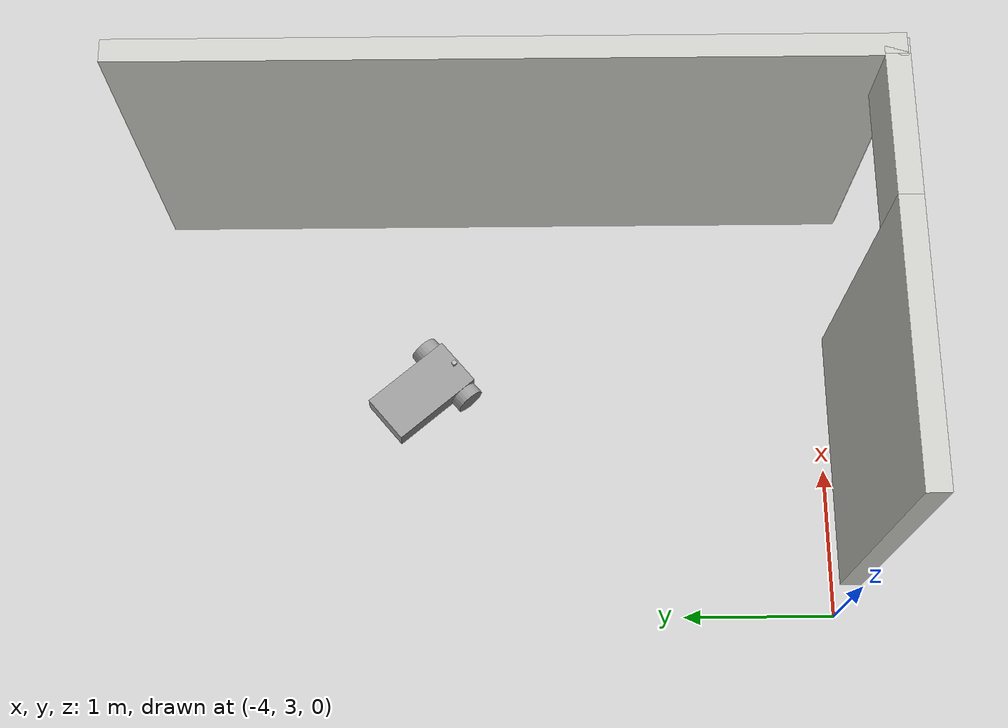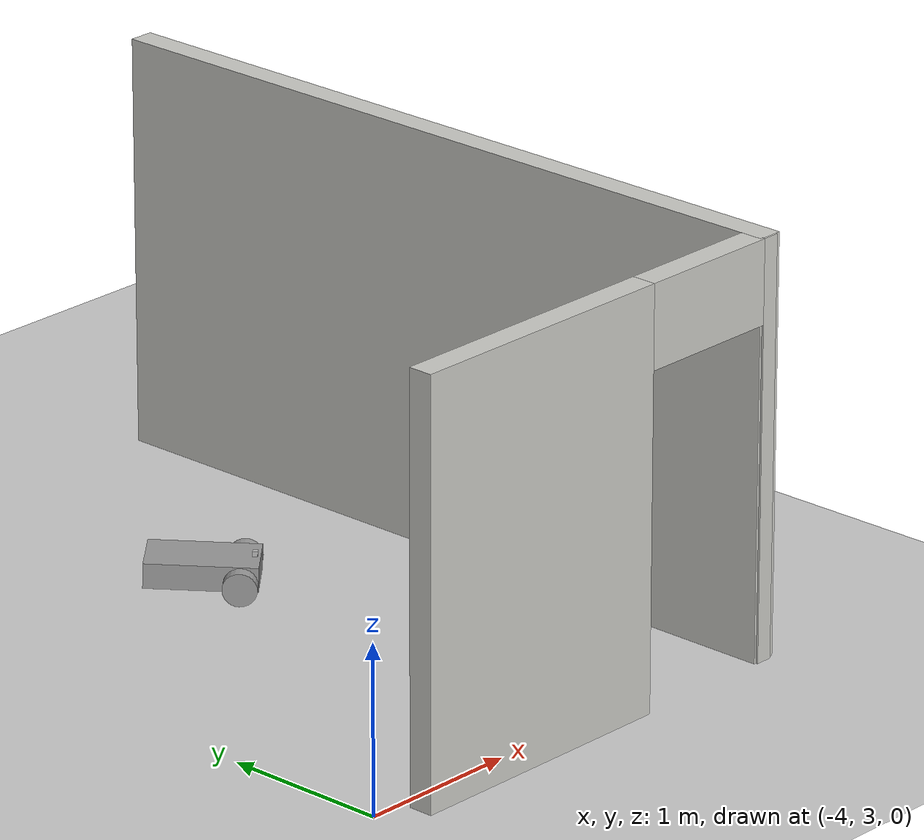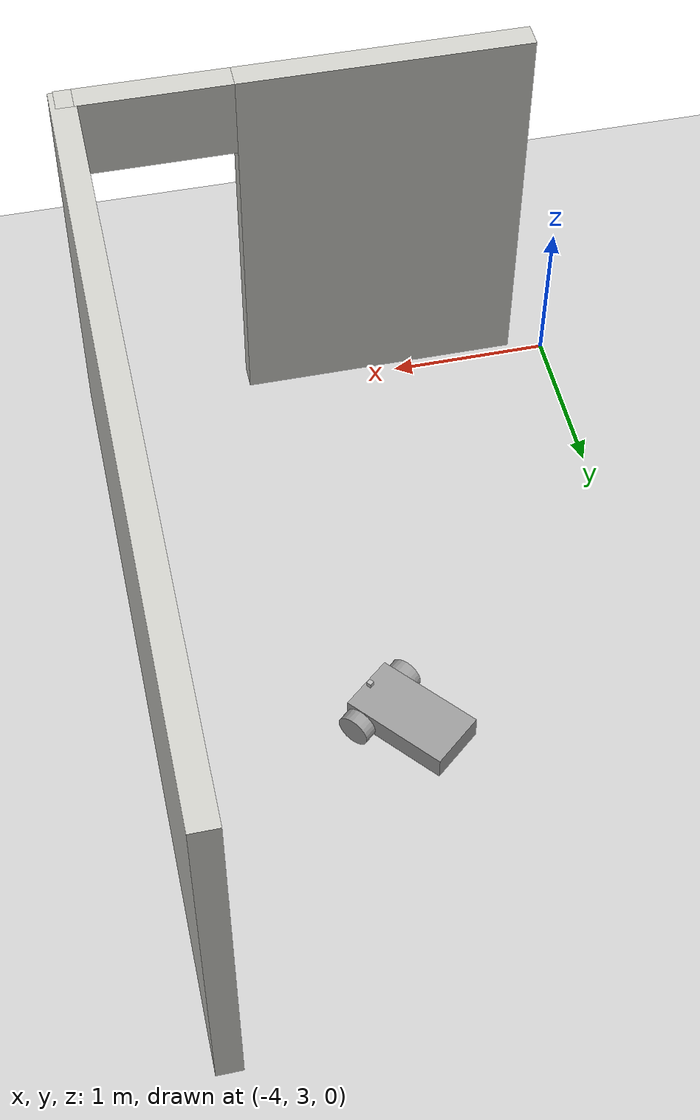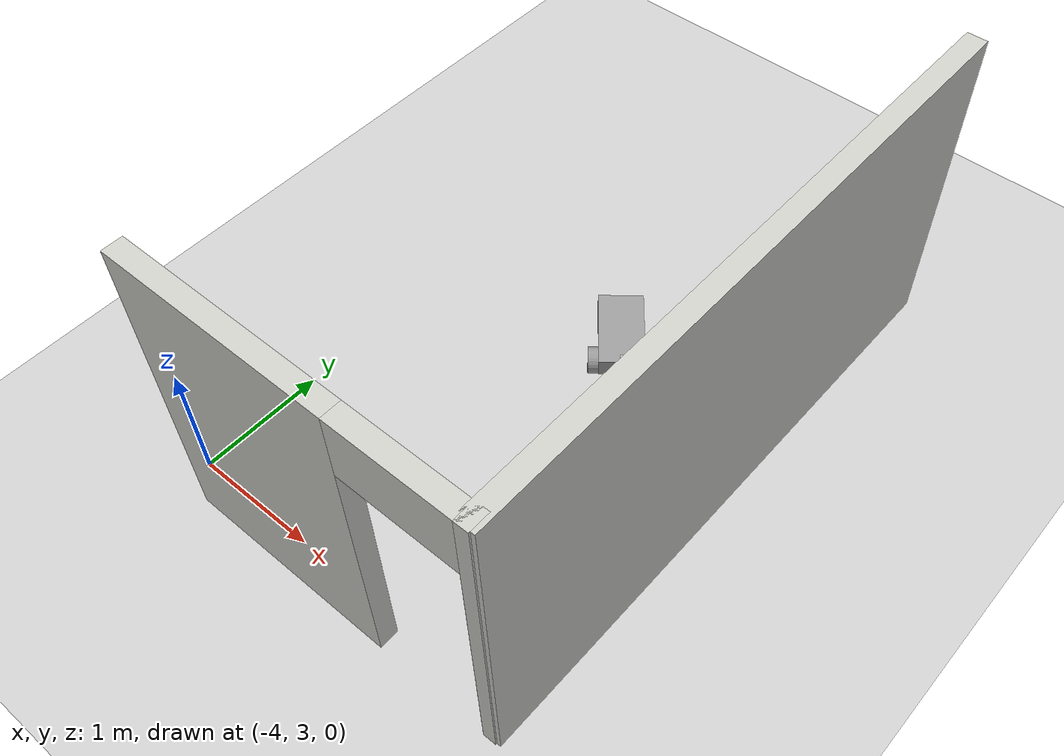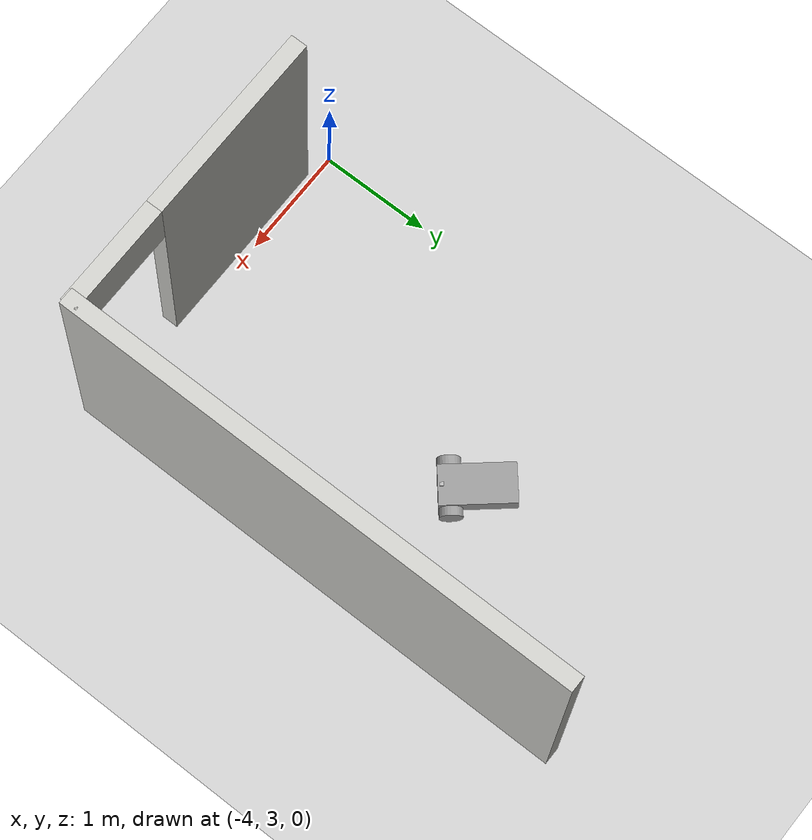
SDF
<sdf version="1.6">
 <world name="default">
  <model name="ground_plane">
   <static>1</static>
   <link name="link">
    <collision name="collision">
     <geometry><plane><normal>0 0 1</normal><size>100 100</size></plane></geometry>
     <surface><friction><ode><mu>100</mu><mu2>50</mu2></ode></friction></surface>
    </collision>
    <visual name="visual">
     <cast_shadows>0</cast_shadows>
     <geometry><plane><normal>0 0 1</normal><size>100 100</size></plane></geometry>
     <material>
      <script><uri>file://media/materials/scripts/gazebo.material</uri><name>Gazebo/Grey</name></script>
     </material>
    </visual>
   </link>
  </model>
  <model name="Building">
   <link name="Wall_267">
    <pose>-2.47738 5.4303 0 0 -0 1.5708</pose>
    <visual name="Wall_267_Visual">
     <pose>0 0 1.25 0 -0 0</pose>
     <geometry><box><size>4.75 0.15 2.5</size></box></geometry>
     <material>
      <script><uri>file://media/materials/scripts/gazebo.material</uri><name>Gazebo/CeilingTiled</name></script>
      <ambient>0.921569 0.807843 0.615686 1</ambient>
      <shader type="pixel"/>
      <diffuse>1 1 1 1</diffuse>
      <specular>0 0 0 1</specular>
      <emissive>0 0 0 1</emissive>
     </material>
     <meta><layer>0</layer></meta>
    </visual>
    <collision name="Wall_267_Collision">
     <pose>0 0 1.25 0 -0 0</pose>
     <geometry><box><size>4.75 0.15 2.5</size></box></geometry>
     <surface>
      <friction>
       <ode><mu>1</mu><mu2>1</mu2><fdir1>0 0 0</fdir1><slip1>0</slip1><slip2>0</slip2></ode>
       <torsional>
        <coefficient>1</coefficient>
        <patch_radius>0</patch_radius>
        <surface_radius>0</surface_radius>
        <use_patch_radius>1</use_patch_radius>
        <ode><slip>0</slip></ode>
       </torsional>
      </friction>
      <bounce><restitution_coefficient>0</restitution_coefficient><threshold>1e+06</threshold></bounce>
      <contact>
       <collide_without_contact>0</collide_without_contact>
       <collide_without_contact_bitmask>1</collide_without_contact_bitmask>
       <collide_bitmask>1</collide_bitmask>
       <ode>
        <soft_cfm>0</soft_cfm>
        <soft_erp>0.2</soft_erp>
        <kp>1e+13</kp>
        <kd>1</kd>
        <max_vel>0.01</max_vel>
        <min_depth>0</min_depth>
       </ode>
       <bullet>
        <split_impulse>1</split_impulse>
        <split_impulse_penetration_threshold>-0.01</split_impulse_penetration_threshold>
        <soft_cfm>0</soft_cfm>
        <soft_erp>0.2</soft_erp>
        <kp>1e+13</kp>
        <kd>1</kd>
       </bullet>
      </contact>
     </surface>
    </collision>
   </link>
   <link name="Wall_340">
    <pose>-3.80853 3.11846 0 0 -0 0</pose>
    <visual name="Wall_340_Visual_0">
     <pose>-0.501718 0 1.25 0 -0 0</pose>
     <geometry><box><size>1.74656 0.15 2.5</size></box></geometry>
     <material>
      <script><uri>file://media/materials/scripts/gazebo.material</uri><name>Gazebo/CeilingTiled</name></script>
      <ambient>0.921569 0.807843 0.615686 1</ambient>
      <shader type="pixel"/>
      <diffuse>1 1 1 1</diffuse>
      <specular>0 0 0 1</specular>
      <emissive>0 0 0 1</emissive>
     </material>
     <meta><layer>0</layer></meta>
    </visual>
    <visual name="Wall_340_Visual_1">
     <pose>1.32328 0 1.25 0 -0 0</pose>
     <geometry><box><size>0.103436 0.15 2.5</size></box></geometry>
     <material>
      <script><uri>file://media/materials/scripts/gazebo.material</uri><name>Gazebo/CeilingTiled</name></script>
      <ambient>0.921569 0.807843 0.615686 1</ambient>
      <shader type="pixel"/>
      <diffuse>1 1 1 1</diffuse>
      <specular>0 0 0 1</specular>
      <emissive>0 0 0 1</emissive>
     </material>
     <meta><layer>0</layer></meta>
    </visual>
    <visual name="Wall_340_Visual_2">
     <pose>0.821564 0 2.25 0 -0 0</pose>
     <geometry><box><size>0.9 0.15 0.5</size></box></geometry>
     <material>
      <script><uri>file://media/materials/scripts/gazebo.material</uri><name>Gazebo/CeilingTiled</name></script>
      <ambient>0.921569 0.807843 0.615686 1</ambient>
      <shader type="pixel"/>
      <diffuse>1 1 1 1</diffuse>
      <specular>0 0 0 1</specular>
      <emissive>0 0 0 1</emissive>
     </material>
     <meta><layer>0</layer></meta>
    </visual>
    <collision name="Wall_340_Collision_0">
     <pose>-0.501718 0 1.25 0 -0 0</pose>
     <geometry><box><size>1.74656 0.15 2.5</size></box></geometry>
     <surface>
      <friction>
       <ode><mu>1</mu><mu2>1</mu2><fdir1>0 0 0</fdir1><slip1>0</slip1><slip2>0</slip2></ode>
       <torsional>
        <coefficient>1</coefficient>
        <patch_radius>0</patch_radius>
        <surface_radius>0</surface_radius>
        <use_patch_radius>1</use_patch_radius>
        <ode><slip>0</slip></ode>
       </torsional>
      </friction>
      <bounce><restitution_coefficient>0</restitution_coefficient><threshold>1e+06</threshold></bounce>
      <contact>
       <collide_without_contact>0</collide_without_contact>
       <collide_without_contact_bitmask>1</collide_without_contact_bitmask>
       <collide_bitmask>1</collide_bitmask>
       <ode>
        <soft_cfm>0</soft_cfm>
        <soft_erp>0.2</soft_erp>
        <kp>1e+13</kp>
        <kd>1</kd>
        <max_vel>0.01</max_vel>
        <min_depth>0</min_depth>
       </ode>
       <bullet>
        <split_impulse>1</split_impulse>
        <split_impulse_penetration_threshold>-0.01</split_impulse_penetration_threshold>
        <soft_cfm>0</soft_cfm>
        <soft_erp>0.2</soft_erp>
        <kp>1e+13</kp>
        <kd>1</kd>
       </bullet>
      </contact>
     </surface>
    </collision>
    <collision name="Wall_340_Collision_1">
     <pose>1.32328 0 1.25 0 -0 0</pose>
     <geometry><box><size>0.103436 0.15 2.5</size></box></geometry>
     <surface>
      <friction>
       <ode><mu>1</mu><mu2>1</mu2><fdir1>0 0 0</fdir1><slip1>0</slip1><slip2>0</slip2></ode>
       <torsional>
        <coefficient>1</coefficient>
        <patch_radius>0</patch_radius>
        <surface_radius>0</surface_radius>
        <use_patch_radius>1</use_patch_radius>
        <ode><slip>0</slip></ode>
       </torsional>
      </friction>
      <bounce><restitution_coefficient>0</restitution_coefficient><threshold>1e+06</threshold></bounce>
      <contact>
       <collide_without_contact>0</collide_without_contact>
       <collide_without_contact_bitmask>1</collide_without_contact_bitmask>
       <collide_bitmask>1</collide_bitmask>
       <ode>
        <soft_cfm>0</soft_cfm>
        <soft_erp>0.2</soft_erp>
        <kp>1e+13</kp>
        <kd>1</kd>
        <max_vel>0.01</max_vel>
        <min_depth>0</min_depth>
       </ode>
       <bullet>
        <split_impulse>1</split_impulse>
        <split_impulse_penetration_threshold>-0.01</split_impulse_penetration_threshold>
        <soft_cfm>0</soft_cfm>
        <soft_erp>0.2</soft_erp>
        <kp>1e+13</kp>
        <kd>1</kd>
       </bullet>
      </contact>
     </surface>
    </collision>
    <collision name="Wall_340_Collision_2">
     <pose>0.821564 0 2.25 0 -0 0</pose>
     <geometry><box><size>0.9 0.15 0.5</size></box></geometry>
     <surface>
      <friction>
       <ode><mu>1</mu><mu2>1</mu2><fdir1>0 0 0</fdir1><slip1>0</slip1><slip2>0</slip2></ode>
       <torsional>
        <coefficient>1</coefficient>
        <patch_radius>0</patch_radius>
        <surface_radius>0</surface_radius>
        <use_patch_radius>1</use_patch_radius>
        <ode><slip>0</slip></ode>
       </torsional>
      </friction>
      <bounce><restitution_coefficient>0</restitution_coefficient><threshold>1e+06</threshold></bounce>
      <contact>
       <collide_without_contact>0</collide_without_contact>
       <collide_without_contact_bitmask>1</collide_without_contact_bitmask>
       <collide_bitmask>1</collide_bitmask>
       <ode>
        <soft_cfm>0</soft_cfm>
        <soft_erp>0.2</soft_erp>
        <kp>1e+13</kp>
        <kd>1</kd>
        <max_vel>0.01</max_vel>
        <min_depth>0</min_depth>
       </ode>
       <bullet>
        <split_impulse>1</split_impulse>
        <split_impulse_penetration_threshold>-0.01</split_impulse_penetration_threshold>
        <soft_cfm>0</soft_cfm>
        <soft_erp>0.2</soft_erp>
        <kp>1e+13</kp>
        <kd>1</kd>
       </bullet>
      </contact>
     </surface>
    </collision>
   </link>
   <static>1</static>
   <pose>1.39929 -0.252215 0 0 -0 0</pose>
  </model>
  <model name="VehicleRobot_2">
   <link name="link_10_clone">
    <pose>0.278989 0.302807 0.099972 1.5707 -0 0</pose>
    <inertial>
     <mass>0.5</mass>
     <inertia><ixx>0.145833</ixx><ixy>0</ixy><ixz>0</ixz><iyy>0.145833</iyy><iyz>0</iyz><izz>0.125</izz></inertia>
    </inertial>
    <visual name="visual">
     <geometry><cylinder><radius>0.1</radius><length>0.08</length></cylinder></geometry>
     <material>
      <lighting>1</lighting>
      <script><uri>file://media/materials/scripts/gazebo.material</uri><name>Gazebo/Grey</name></script>
      <shader type="pixel"><normal_map>__default__</normal_map></shader>
      <ambient>0.3 0.3 0.3 1</ambient>
      <diffuse>0.7 0.7 0.7 1</diffuse>
      <specular>0.01 0.01 0.01 1</specular>
      <emissive>0 0 0 1</emissive>
     </material>
    </visual>
    <collision name="collision">
     <geometry><cylinder><radius>0.1</radius><length>0.08</length></cylinder></geometry>
     <surface>
      <friction>
       <ode><mu>1</mu><mu2>1</mu2><fdir1>0 0 0</fdir1><slip1>0</slip1><slip2>0</slip2></ode>
       <torsional>
        <coefficient>1</coefficient>
        <patch_radius>0</patch_radius>
        <surface_radius>0</surface_radius>
        <use_patch_radius>1</use_patch_radius>
        <ode><slip>0</slip></ode>
       </torsional>
      </friction>
      <bounce><restitution_coefficient>0</restitution_coefficient><threshold>1e+06</threshold></bounce>
      <contact>
       <collide_without_contact>0</collide_without_contact>
       <collide_without_contact_bitmask>1</collide_without_contact_bitmask>
       <collide_bitmask>1</collide_bitmask>
       <ode>
        <soft_cfm>0</soft_cfm>
        <soft_erp>0.2</soft_erp>
        <kp>1e+13</kp>
        <kd>1</kd>
        <max_vel>0.01</max_vel>
        <min_depth>0</min_depth>
       </ode>
       <bullet>
        <split_impulse>1</split_impulse>
        <split_impulse_penetration_threshold>-0.01</split_impulse_penetration_threshold>
        <soft_cfm>0</soft_cfm>
        <soft_erp>0.2</soft_erp>
        <kp>1e+13</kp>
        <kd>1</kd>
       </bullet>
      </contact>
     </surface>
    </collision>
   </link>
   <link name="link_10_clone_clone">
    <pose>0.278989 -0.128364 0.100018 1.5707 -0 0</pose>
    <inertial>
     <mass>0.5</mass>
     <inertia><ixx>0.145833</ixx><ixy>0</ixy><ixz>0</ixz><iyy>0.145833</iyy><iyz>0</iyz><izz>0.125</izz></inertia>
    </inertial>
    <visual name="visual">
     <geometry><cylinder><radius>0.1</radius><length>0.08</length></cylinder></geometry>
     <material>
      <lighting>1</lighting>
      <script><uri>file://media/materials/scripts/gazebo.material</uri><name>Gazebo/Grey</name></script>
      <shader type="pixel"><normal_map>__default__</normal_map></shader>
      <ambient>0.3 0.3 0.3 1</ambient>
      <diffuse>0.7 0.7 0.7 1</diffuse>
      <specular>0.01 0.01 0.01 1</specular>
      <emissive>0 0 0 1</emissive>
     </material>
    </visual>
    <collision name="collision">
     <geometry><cylinder><radius>0.1</radius><length>0.08</length></cylinder></geometry>
     <surface>
      <friction>
       <ode><mu>1</mu><mu2>1</mu2><fdir1>0 0 0</fdir1><slip1>0</slip1><slip2>0</slip2></ode>
       <torsional>
        <coefficient>1</coefficient>
        <patch_radius>0</patch_radius>
        <surface_radius>0</surface_radius>
        <use_patch_radius>1</use_patch_radius>
        <ode><slip>0</slip></ode>
       </torsional>
      </friction>
      <bounce><restitution_coefficient>0</restitution_coefficient><threshold>1e+06</threshold></bounce>
      <contact>
       <collide_without_contact>0</collide_without_contact>
       <collide_without_contact_bitmask>1</collide_without_contact_bitmask>
       <collide_bitmask>1</collide_bitmask>
       <ode>
        <soft_cfm>0</soft_cfm>
        <soft_erp>0.2</soft_erp>
        <kp>1e+13</kp>
        <kd>1</kd>
        <max_vel>0.01</max_vel>
        <min_depth>0</min_depth>
       </ode>
       <bullet>
        <split_impulse>1</split_impulse>
        <split_impulse_penetration_threshold>-0.01</split_impulse_penetration_threshold>
        <soft_cfm>0</soft_cfm>
        <soft_erp>0.2</soft_erp>
        <kp>1e+13</kp>
        <kd>1</kd>
       </bullet>
      </contact>
     </surface>
    </collision>
   </link>
   <link name="link_11">
    <pose>-0.191011 0.086646 0.08 0 -0 0</pose>
    <inertial>
     <mass>0.5</mass>
     <inertia><ixx>0.1</ixx><ixy>0</ixy><ixz>0</ixz><iyy>0.1</iyy><iyz>0</iyz><izz>0.1</izz></inertia>
    </inertial>
    <visual name="visual">
     <geometry><sphere><radius>0.08</radius></sphere></geometry>
     <material>
      <lighting>1</lighting>
      <script><uri>file://media/materials/scripts/gazebo.material</uri><name>Gazebo/Grey</name></script>
      <shader type="pixel"><normal_map>__default__</normal_map></shader>
      <ambient>0.3 0.3 0.3 1</ambient>
      <diffuse>0.7 0.7 0.7 1</diffuse>
      <specular>0.01 0.01 0.01 1</specular>
      <emissive>0 0 0 1</emissive>
     </material>
    </visual>
    <collision name="collision">
     <geometry><sphere><radius>0.08</radius></sphere></geometry>
     <surface>
      <friction>
       <ode><mu>1</mu><mu2>1</mu2><fdir1>0 0 0</fdir1><slip1>0</slip1><slip2>0</slip2></ode>
       <torsional>
        <coefficient>1</coefficient>
        <patch_radius>0</patch_radius>
        <surface_radius>0</surface_radius>
        <use_patch_radius>1</use_patch_radius>
        <ode><slip>0</slip></ode>
       </torsional>
      </friction>
      <bounce><restitution_coefficient>0</restitution_coefficient><threshold>1e+06</threshold></bounce>
      <contact>
       <collide_without_contact>0</collide_without_contact>
       <collide_without_contact_bitmask>1</collide_without_contact_bitmask>
       <collide_bitmask>1</collide_bitmask>
       <ode>
        <soft_cfm>0</soft_cfm>
        <soft_erp>0.2</soft_erp>
        <kp>1e+13</kp>
        <kd>1</kd>
        <max_vel>0.01</max_vel>
        <min_depth>0</min_depth>
       </ode>
       <bullet>
        <split_impulse>1</split_impulse>
        <split_impulse_penetration_threshold>-0.01</split_impulse_penetration_threshold>
        <soft_cfm>0</soft_cfm>
        <soft_erp>0.2</soft_erp>
        <kp>1e+13</kp>
        <kd>1</kd>
       </bullet>
      </contact>
     </surface>
    </collision>
   </link>
   <link name="link_9">
    <pose>0.053989 0.086646 0.13 0 -0 0</pose>
    <inertial>
     <mass>0.5</mass>
     <inertia>
      <ixx>0.166667</ixx>
      <ixy>0</ixy>
      <ixz>0</ixz>
      <iyy>0.166667</iyy>
      <iyz>0</iyz>
      <izz>0.166667</izz>
     </inertia>
    </inertial>
    <visual name="visual">
     <geometry><box><size>0.65 0.35 0.15</size></box></geometry>
     <material>
      <lighting>1</lighting>
      <script><uri>file://media/materials/scripts/gazebo.material</uri><name>Gazebo/Grey</name></script>
      <shader type="pixel"><normal_map>__default__</normal_map></shader>
      <ambient>0.3 0.3 0.3 1</ambient>
      <diffuse>0.7 0.7 0.7 1</diffuse>
      <specular>0.01 0.01 0.01 1</specular>
      <emissive>0 0 0 1</emissive>
     </material>
    </visual>
    <collision name="collision">
     <geometry><box><size>0.65 0.35 0.15</size></box></geometry>
     <surface>
      <friction>
       <ode><mu>1</mu><mu2>1</mu2><fdir1>0 0 0</fdir1><slip1>0</slip1><slip2>0</slip2></ode>
       <torsional>
        <coefficient>1</coefficient>
        <patch_radius>0</patch_radius>
        <surface_radius>0</surface_radius>
        <use_patch_radius>1</use_patch_radius>
        <ode><slip>0</slip></ode>
       </torsional>
      </friction>
      <bounce><restitution_coefficient>0</restitution_coefficient><threshold>1e+06</threshold></bounce>
      <contact>
       <collide_without_contact>0</collide_without_contact>
       <collide_without_contact_bitmask>1</collide_without_contact_bitmask>
       <collide_bitmask>1</collide_bitmask>
       <ode>
        <soft_cfm>0</soft_cfm>
        <soft_erp>0.2</soft_erp>
        <kp>1e+13</kp>
        <kd>1</kd>
        <max_vel>0.01</max_vel>
        <min_depth>0</min_depth>
       </ode>
       <bullet>
        <split_impulse>1</split_impulse>
        <split_impulse_penetration_threshold>-0.01</split_impulse_penetration_threshold>
        <soft_cfm>0</soft_cfm>
        <soft_erp>0.2</soft_erp>
        <kp>1e+13</kp>
        <kd>1</kd>
       </bullet>
      </contact>
     </surface>
    </collision>
   </link>
   <model name="camera">
    <link name="link">
     <inertial>
      <mass>0.04</mass>
      <inertia>
       <ixx>0.00016667</ixx>
       <iyy>0.00016667</iyy>
       <izz>0.00016667</izz>
       <ixy>0</ixy>
       <ixz>0</ixz>
       <iyz>0</iyz>
      </inertia>
     </inertial>
     <sensor name="camera" type="camera">
      <camera name="__default__">
       <horizontal_fov>1.047</horizontal_fov>
       <image><width>320</width><height>240</height></image>
       <clip><near>0.1</near><far>100</far></clip>
      </camera>
      <always_on>1</always_on>
      <update_rate>30</update_rate>
      <visualize>1</visualize>
     </sensor>
     <visual name="visual">
      <geometry><box><size>0.03 0.03 0.03</size></box></geometry>
      <material><shader type="pixel"><normal_map>__default__</normal_map></shader></material>
     </visual>
     <collision name="collision">
      <geometry><box><size>0.03 0.03 0.03</size></box></geometry>
      <surface>
       <friction>
        <ode><mu>1</mu><mu2>1</mu2><fdir1>0 0 0</fdir1><slip1>0</slip1><slip2>0</slip2></ode>
        <torsional>
         <coefficient>1</coefficient>
         <patch_radius>0</patch_radius>
         <surface_radius>0</surface_radius>
         <use_patch_radius>1</use_patch_radius>
         <ode><slip>0</slip></ode>
        </torsional>
       </friction>
       <bounce><restitution_coefficient>0</restitution_coefficient><threshold>1e+06</threshold></bounce>
       <contact>
        <collide_without_contact>0</collide_without_contact>
        <collide_without_contact_bitmask>1</collide_without_contact_bitmask>
        <collide_bitmask>1</collide_bitmask>
        <ode>
         <soft_cfm>0</soft_cfm>
         <soft_erp>0.2</soft_erp>
         <kp>1e+13</kp>
         <kd>1</kd>
         <max_vel>0.01</max_vel>
         <min_depth>0</min_depth>
        </ode>
        <bullet>
         <split_impulse>1</split_impulse>
         <split_impulse_penetration_threshold>-0.01</split_impulse_penetration_threshold>
         <soft_cfm>0</soft_cfm>
         <soft_erp>0.2</soft_erp>
         <kp>1e+13</kp>
         <kd>1</kd>
        </bullet>
       </contact>
      </surface>
     </collision>
    </link>
    <static>0</static>
    <pose>0.346819 0.087578 0.221125 0 -0 0</pose>
   </model>
   <joint name="link_9_JOINT_1" type="revolute">
    <parent>link_9</parent>
    <child>link_10_clone_clone</child>
    <axis>
     <xyz>0 0 1</xyz>
     <use_parent_model_frame>0</use_parent_model_frame>
     <limit>
      <lower>-1.79769e+308</lower>
      <upper>1.79769e+308</upper>
      <effort>-1</effort>
      <velocity>-1</velocity>
     </limit>
     <dynamics>
      <spring_reference>0</spring_reference>
      <spring_stiffness>0</spring_stiffness>
      <damping>0</damping>
      <friction>0</friction>
     </dynamics>
    </axis>
    <physics>
     <ode><limit><cfm>0</cfm><erp>0.2</erp></limit><suspension><cfm>0</cfm><erp>0.2</erp></suspension></ode>
    </physics>
   </joint>
   <joint name="link_9_JOINT_2" type="revolute">
    <parent>link_9</parent>
    <child>link_10_clone</child>
    <axis>
     <xyz>0 0 1</xyz>
     <use_parent_model_frame>0</use_parent_model_frame>
     <limit>
      <lower>-1.79769e+308</lower>
      <upper>1.79769e+308</upper>
      <effort>-1</effort>
      <velocity>-1</velocity>
     </limit>
     <dynamics>
      <spring_reference>0</spring_reference>
      <spring_stiffness>0</spring_stiffness>
      <damping>0</damping>
      <friction>0</friction>
     </dynamics>
    </axis>
    <physics>
     <ode><limit><cfm>0</cfm><erp>0.2</erp></limit><suspension><cfm>0</cfm><erp>0.2</erp></suspension></ode>
    </physics>
   </joint>
   <joint name="link_9_JOINT_3" type="ball">
    <parent>link_9</parent>
    <child>link_11</child>
    <physics>
     <ode><limit><cfm>0</cfm><erp>0.2</erp></limit><suspension><cfm>0</cfm><erp>0.2</erp></suspension></ode>
    </physics>
   </joint>
   <joint name="link_9_JOINT_5" type="fixed">
    <parent>link_9</parent>
    <child>camera::link</child>
    <physics>
     <ode><limit><cfm>0</cfm><erp>0.2</erp></limit><suspension><cfm>0</cfm><erp>0.2</erp></suspension></ode>
    </physics>
   </joint>
   <static>0</static>
   <pose>-2.55657 5.74479 0.007111 0.000104 0.025392 -0.873105</pose>
  </model>
 </world>
</sdf>
